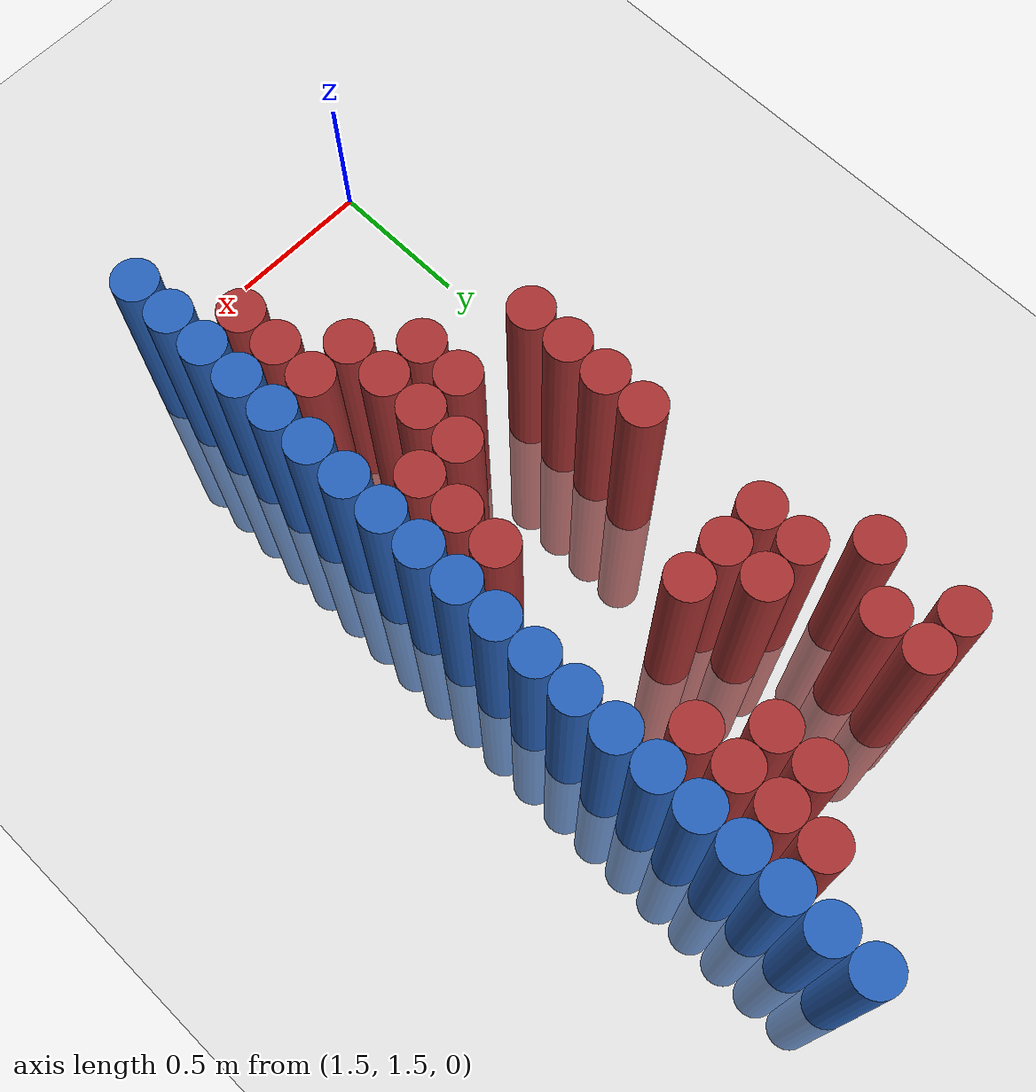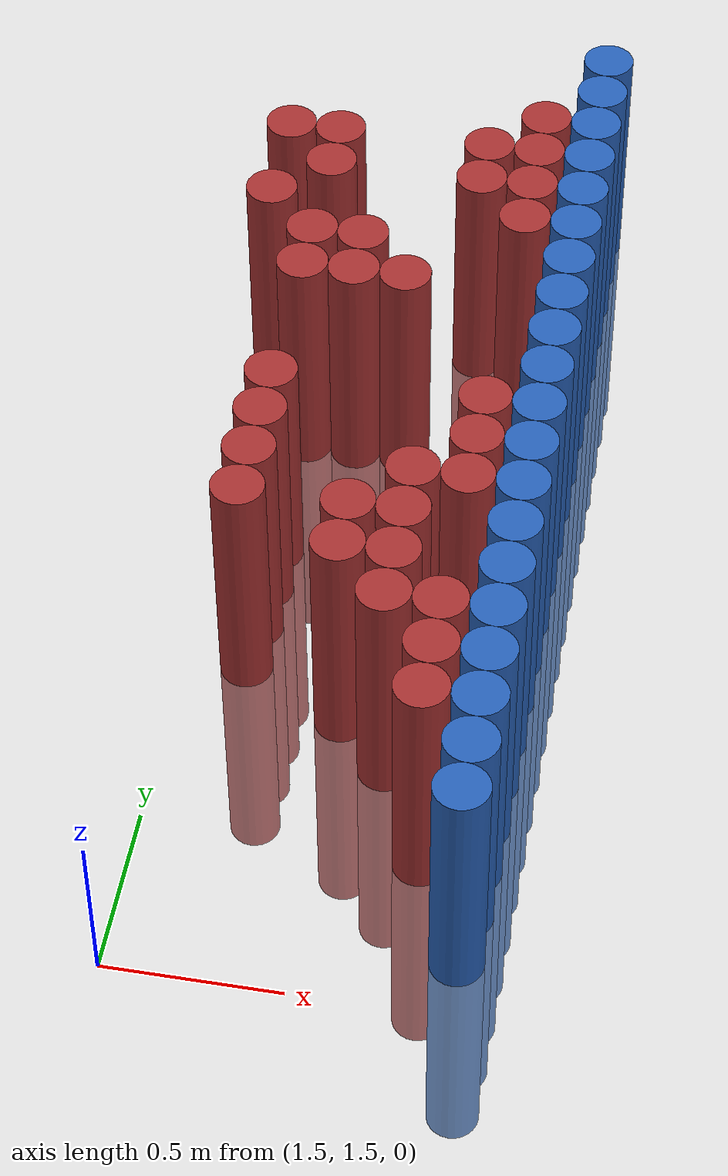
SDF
<sdf version="1.6">
 <world name="default">
  <model name="ground_plane">
   <static>1</static>
   <link name="link">
    <collision name="collision">
     <geometry><plane><normal>0 0 1</normal><size>100 100</size></plane></geometry>
     <surface><friction><ode><mu>100</mu><mu2>50</mu2></ode></friction></surface>
    </collision>
    <visual name="visual">
     <cast_shadows>0</cast_shadows>
     <geometry><plane><normal>0 0 1</normal><size>100 100</size></plane></geometry>
     <material>
      <script><uri>file://media/materials/scripts/gazebo.material</uri><name>Gazebo/Grey</name></script>
     </material>
    </visual>
   </link>
  </model>
  <model name="unit_cylinder_188">
   <static>1</static>
   <pose>1.525000 3.775000 0.000000 0.000000 0.000000 0.000000</pose>
   <link name="link">
    <inertial>
     <mass>1</mass>
     <inertia><ixx>0.145833</ixx><ixy>0</ixy><ixz>0</ixz><iyy>0.145833</iyy><iyz>0</iyz><izz>0.125</izz></inertia>
    </inertial>
    <collision name="collision">
     <geometry><cylinder><radius>0.075000</radius><length>1.5</length></cylinder></geometry>
    </collision>
    <visual name="visual">
     <geometry><cylinder><radius>0.075000</radius><length>1.5</length></cylinder></geometry>
     <material>
      <ambient>0.648000 0.192000 0.192000 1</ambient>
      <diffuse>0.648000 0.192000 0.192000 1</diffuse>
     </material>
     <material>
      <script><name>Gazebo/Grey</name><uri>file://media/materials/scripts/gazebo.material</uri></script>
     </material>
    </visual>
   </link>
  </model>
  <model name="unit_cylinder_189">
   <static>1</static>
   <pose>1.525000 4.075000 0.000000 0.000000 0.000000 0.000000</pose>
   <link name="link">
    <inertial>
     <mass>1</mass>
     <inertia><ixx>0.145833</ixx><ixy>0</ixy><ixz>0</ixz><iyy>0.145833</iyy><iyz>0</iyz><izz>0.125</izz></inertia>
    </inertial>
    <collision name="collision">
     <geometry><cylinder><radius>0.075000</radius><length>1.5</length></cylinder></geometry>
    </collision>
    <visual name="visual">
     <geometry><cylinder><radius>0.075000</radius><length>1.5</length></cylinder></geometry>
     <material>
      <ambient>0.648000 0.192000 0.192000 1</ambient>
      <diffuse>0.648000 0.192000 0.192000 1</diffuse>
     </material>
     <material>
      <script><name>Gazebo/Grey</name><uri>file://media/materials/scripts/gazebo.material</uri></script>
     </material>
    </visual>
   </link>
  </model>
  <model name="unit_cylinder_190">
   <static>1</static>
   <pose>1.675000 2.575000 0.000000 0.000000 0.000000 0.000000</pose>
   <link name="link">
    <inertial>
     <mass>1</mass>
     <inertia><ixx>0.145833</ixx><ixy>0</ixy><ixz>0</ixz><iyy>0.145833</iyy><iyz>0</iyz><izz>0.125</izz></inertia>
    </inertial>
    <collision name="collision">
     <geometry><cylinder><radius>0.075000</radius><length>1.5</length></cylinder></geometry>
    </collision>
    <visual name="visual">
     <geometry><cylinder><radius>0.075000</radius><length>1.5</length></cylinder></geometry>
     <material>
      <ambient>0.648000 0.192000 0.192000 1</ambient>
      <diffuse>0.648000 0.192000 0.192000 1</diffuse>
     </material>
     <material>
      <script><name>Gazebo/Grey</name><uri>file://media/materials/scripts/gazebo.material</uri></script>
     </material>
    </visual>
   </link>
  </model>
  <model name="unit_cylinder_191">
   <static>1</static>
   <pose>1.675000 2.725000 0.000000 0.000000 0.000000 0.000000</pose>
   <link name="link">
    <inertial>
     <mass>1</mass>
     <inertia><ixx>0.145833</ixx><ixy>0</ixy><ixz>0</ixz><iyy>0.145833</iyy><iyz>0</iyz><izz>0.125</izz></inertia>
    </inertial>
    <collision name="collision">
     <geometry><cylinder><radius>0.075000</radius><length>1.5</length></cylinder></geometry>
    </collision>
    <visual name="visual">
     <geometry><cylinder><radius>0.075000</radius><length>1.5</length></cylinder></geometry>
     <material>
      <ambient>0.648000 0.192000 0.192000 1</ambient>
      <diffuse>0.648000 0.192000 0.192000 1</diffuse>
     </material>
     <material>
      <script><name>Gazebo/Grey</name><uri>file://media/materials/scripts/gazebo.material</uri></script>
     </material>
    </visual>
   </link>
  </model>
  <model name="unit_cylinder_192">
   <static>1</static>
   <pose>1.675000 2.875000 0.000000 0.000000 0.000000 0.000000</pose>
   <link name="link">
    <inertial>
     <mass>1</mass>
     <inertia><ixx>0.145833</ixx><ixy>0</ixy><ixz>0</ixz><iyy>0.145833</iyy><iyz>0</iyz><izz>0.125</izz></inertia>
    </inertial>
    <collision name="collision">
     <geometry><cylinder><radius>0.075000</radius><length>1.5</length></cylinder></geometry>
    </collision>
    <visual name="visual">
     <geometry><cylinder><radius>0.075000</radius><length>1.5</length></cylinder></geometry>
     <material>
      <ambient>0.648000 0.192000 0.192000 1</ambient>
      <diffuse>0.648000 0.192000 0.192000 1</diffuse>
     </material>
     <material>
      <script><name>Gazebo/Grey</name><uri>file://media/materials/scripts/gazebo.material</uri></script>
     </material>
    </visual>
   </link>
  </model>
  <model name="unit_cylinder_193">
   <static>1</static>
   <pose>1.675000 3.025000 0.000000 0.000000 0.000000 0.000000</pose>
   <link name="link">
    <inertial>
     <mass>1</mass>
     <inertia><ixx>0.145833</ixx><ixy>0</ixy><ixz>0</ixz><iyy>0.145833</iyy><iyz>0</iyz><izz>0.125</izz></inertia>
    </inertial>
    <collision name="collision">
     <geometry><cylinder><radius>0.075000</radius><length>1.5</length></cylinder></geometry>
    </collision>
    <visual name="visual">
     <geometry><cylinder><radius>0.075000</radius><length>1.5</length></cylinder></geometry>
     <material>
      <ambient>0.648000 0.192000 0.192000 1</ambient>
      <diffuse>0.648000 0.192000 0.192000 1</diffuse>
     </material>
     <material>
      <script><name>Gazebo/Grey</name><uri>file://media/materials/scripts/gazebo.material</uri></script>
     </material>
    </visual>
   </link>
  </model>
  <model name="unit_cylinder_194">
   <static>1</static>
   <pose>1.675000 3.475000 0.000000 0.000000 0.000000 0.000000</pose>
   <link name="link">
    <inertial>
     <mass>1</mass>
     <inertia><ixx>0.145833</ixx><ixy>0</ixy><ixz>0</ixz><iyy>0.145833</iyy><iyz>0</iyz><izz>0.125</izz></inertia>
    </inertial>
    <collision name="collision">
     <geometry><cylinder><radius>0.075000</radius><length>1.5</length></cylinder></geometry>
    </collision>
    <visual name="visual">
     <geometry><cylinder><radius>0.075000</radius><length>1.5</length></cylinder></geometry>
     <material>
      <ambient>0.648000 0.192000 0.192000 1</ambient>
      <diffuse>0.648000 0.192000 0.192000 1</diffuse>
     </material>
     <material>
      <script><name>Gazebo/Grey</name><uri>file://media/materials/scripts/gazebo.material</uri></script>
     </material>
    </visual>
   </link>
  </model>
  <model name="unit_cylinder_195">
   <static>1</static>
   <pose>1.675000 3.625000 0.000000 0.000000 0.000000 0.000000</pose>
   <link name="link">
    <inertial>
     <mass>1</mass>
     <inertia><ixx>0.145833</ixx><ixy>0</ixy><ixz>0</ixz><iyy>0.145833</iyy><iyz>0</iyz><izz>0.125</izz></inertia>
    </inertial>
    <collision name="collision">
     <geometry><cylinder><radius>0.075000</radius><length>1.5</length></cylinder></geometry>
    </collision>
    <visual name="visual">
     <geometry><cylinder><radius>0.075000</radius><length>1.5</length></cylinder></geometry>
     <material>
      <ambient>0.648000 0.192000 0.192000 1</ambient>
      <diffuse>0.648000 0.192000 0.192000 1</diffuse>
     </material>
     <material>
      <script><name>Gazebo/Grey</name><uri>file://media/materials/scripts/gazebo.material</uri></script>
     </material>
    </visual>
   </link>
  </model>
  <model name="unit_cylinder_196">
   <static>1</static>
   <pose>1.675000 3.925000 0.000000 0.000000 0.000000 0.000000</pose>
   <link name="link">
    <inertial>
     <mass>1</mass>
     <inertia><ixx>0.145833</ixx><ixy>0</ixy><ixz>0</ixz><iyy>0.145833</iyy><iyz>0</iyz><izz>0.125</izz></inertia>
    </inertial>
    <collision name="collision">
     <geometry><cylinder><radius>0.075000</radius><length>1.5</length></cylinder></geometry>
    </collision>
    <visual name="visual">
     <geometry><cylinder><radius>0.075000</radius><length>1.5</length></cylinder></geometry>
     <material>
      <ambient>0.648000 0.192000 0.192000 1</ambient>
      <diffuse>0.648000 0.192000 0.192000 1</diffuse>
     </material>
     <material>
      <script><name>Gazebo/Grey</name><uri>file://media/materials/scripts/gazebo.material</uri></script>
     </material>
    </visual>
   </link>
  </model>
  <model name="unit_cylinder_197">
   <static>1</static>
   <pose>1.675000 4.075000 0.000000 0.000000 0.000000 0.000000</pose>
   <link name="link">
    <inertial>
     <mass>1</mass>
     <inertia><ixx>0.145833</ixx><ixy>0</ixy><ixz>0</ixz><iyy>0.145833</iyy><iyz>0</iyz><izz>0.125</izz></inertia>
    </inertial>
    <collision name="collision">
     <geometry><cylinder><radius>0.075000</radius><length>1.5</length></cylinder></geometry>
    </collision>
    <visual name="visual">
     <geometry><cylinder><radius>0.075000</radius><length>1.5</length></cylinder></geometry>
     <material>
      <ambient>0.648000 0.192000 0.192000 1</ambient>
      <diffuse>0.648000 0.192000 0.192000 1</diffuse>
     </material>
     <material>
      <script><name>Gazebo/Grey</name><uri>file://media/materials/scripts/gazebo.material</uri></script>
     </material>
    </visual>
   </link>
  </model>
  <model name="unit_cylinder_198">
   <static>1</static>
   <pose>1.825000 3.475000 0.000000 0.000000 0.000000 0.000000</pose>
   <link name="link">
    <inertial>
     <mass>1</mass>
     <inertia><ixx>0.145833</ixx><ixy>0</ixy><ixz>0</ixz><iyy>0.145833</iyy><iyz>0</iyz><izz>0.125</izz></inertia>
    </inertial>
    <collision name="collision">
     <geometry><cylinder><radius>0.075000</radius><length>1.5</length></cylinder></geometry>
    </collision>
    <visual name="visual">
     <geometry><cylinder><radius>0.075000</radius><length>1.5</length></cylinder></geometry>
     <material>
      <ambient>0.648000 0.192000 0.192000 1</ambient>
      <diffuse>0.648000 0.192000 0.192000 1</diffuse>
     </material>
     <material>
      <script><name>Gazebo/Grey</name><uri>file://media/materials/scripts/gazebo.material</uri></script>
     </material>
    </visual>
   </link>
  </model>
  <model name="unit_cylinder_199">
   <static>1</static>
   <pose>1.825000 3.625000 0.000000 0.000000 0.000000 0.000000</pose>
   <link name="link">
    <inertial>
     <mass>1</mass>
     <inertia><ixx>0.145833</ixx><ixy>0</ixy><ixz>0</ixz><iyy>0.145833</iyy><iyz>0</iyz><izz>0.125</izz></inertia>
    </inertial>
    <collision name="collision">
     <geometry><cylinder><radius>0.075000</radius><length>1.5</length></cylinder></geometry>
    </collision>
    <visual name="visual">
     <geometry><cylinder><radius>0.075000</radius><length>1.5</length></cylinder></geometry>
     <material>
      <ambient>0.648000 0.192000 0.192000 1</ambient>
      <diffuse>0.648000 0.192000 0.192000 1</diffuse>
     </material>
     <material>
      <script><name>Gazebo/Grey</name><uri>file://media/materials/scripts/gazebo.material</uri></script>
     </material>
    </visual>
   </link>
  </model>
  <model name="unit_cylinder_200">
   <static>1</static>
   <pose>1.975000 2.425000 0.000000 0.000000 0.000000 0.000000</pose>
   <link name="link">
    <inertial>
     <mass>1</mass>
     <inertia><ixx>0.145833</ixx><ixy>0</ixy><ixz>0</ixz><iyy>0.145833</iyy><iyz>0</iyz><izz>0.125</izz></inertia>
    </inertial>
    <collision name="collision">
     <geometry><cylinder><radius>0.075000</radius><length>1.5</length></cylinder></geometry>
    </collision>
    <visual name="visual">
     <geometry><cylinder><radius>0.075000</radius><length>1.5</length></cylinder></geometry>
     <material>
      <ambient>0.648000 0.192000 0.192000 1</ambient>
      <diffuse>0.648000 0.192000 0.192000 1</diffuse>
     </material>
     <material>
      <script><name>Gazebo/Grey</name><uri>file://media/materials/scripts/gazebo.material</uri></script>
     </material>
    </visual>
   </link>
  </model>
  <model name="unit_cylinder_201">
   <static>1</static>
   <pose>1.975000 2.575000 0.000000 0.000000 0.000000 0.000000</pose>
   <link name="link">
    <inertial>
     <mass>1</mass>
     <inertia><ixx>0.145833</ixx><ixy>0</ixy><ixz>0</ixz><iyy>0.145833</iyy><iyz>0</iyz><izz>0.125</izz></inertia>
    </inertial>
    <collision name="collision">
     <geometry><cylinder><radius>0.075000</radius><length>1.5</length></cylinder></geometry>
    </collision>
    <visual name="visual">
     <geometry><cylinder><radius>0.075000</radius><length>1.5</length></cylinder></geometry>
     <material>
      <ambient>0.648000 0.192000 0.192000 1</ambient>
      <diffuse>0.648000 0.192000 0.192000 1</diffuse>
     </material>
     <material>
      <script><name>Gazebo/Grey</name><uri>file://media/materials/scripts/gazebo.material</uri></script>
     </material>
    </visual>
   </link>
  </model>
  <model name="unit_cylinder_202">
   <static>1</static>
   <pose>1.975000 3.475000 0.000000 0.000000 0.000000 0.000000</pose>
   <link name="link">
    <inertial>
     <mass>1</mass>
     <inertia><ixx>0.145833</ixx><ixy>0</ixy><ixz>0</ixz><iyy>0.145833</iyy><iyz>0</iyz><izz>0.125</izz></inertia>
    </inertial>
    <collision name="collision">
     <geometry><cylinder><radius>0.075000</radius><length>1.5</length></cylinder></geometry>
    </collision>
    <visual name="visual">
     <geometry><cylinder><radius>0.075000</radius><length>1.5</length></cylinder></geometry>
     <material>
      <ambient>0.648000 0.192000 0.192000 1</ambient>
      <diffuse>0.648000 0.192000 0.192000 1</diffuse>
     </material>
     <material>
      <script><name>Gazebo/Grey</name><uri>file://media/materials/scripts/gazebo.material</uri></script>
     </material>
    </visual>
   </link>
  </model>
  <model name="unit_cylinder_203">
   <static>1</static>
   <pose>2.125000 2.275000 0.000000 0.000000 0.000000 0.000000</pose>
   <link name="link">
    <inertial>
     <mass>1</mass>
     <inertia><ixx>0.145833</ixx><ixy>0</ixy><ixz>0</ixz><iyy>0.145833</iyy><iyz>0</iyz><izz>0.125</izz></inertia>
    </inertial>
    <collision name="collision">
     <geometry><cylinder><radius>0.075000</radius><length>1.5</length></cylinder></geometry>
    </collision>
    <visual name="visual">
     <geometry><cylinder><radius>0.075000</radius><length>1.5</length></cylinder></geometry>
     <material>
      <ambient>0.648000 0.192000 0.192000 1</ambient>
      <diffuse>0.648000 0.192000 0.192000 1</diffuse>
     </material>
     <material>
      <script><name>Gazebo/Grey</name><uri>file://media/materials/scripts/gazebo.material</uri></script>
     </material>
    </visual>
   </link>
  </model>
  <model name="unit_cylinder_204">
   <static>1</static>
   <pose>2.125000 2.425000 0.000000 0.000000 0.000000 0.000000</pose>
   <link name="link">
    <inertial>
     <mass>1</mass>
     <inertia><ixx>0.145833</ixx><ixy>0</ixy><ixz>0</ixz><iyy>0.145833</iyy><iyz>0</iyz><izz>0.125</izz></inertia>
    </inertial>
    <collision name="collision">
     <geometry><cylinder><radius>0.075000</radius><length>1.5</length></cylinder></geometry>
    </collision>
    <visual name="visual">
     <geometry><cylinder><radius>0.075000</radius><length>1.5</length></cylinder></geometry>
     <material>
      <ambient>0.648000 0.192000 0.192000 1</ambient>
      <diffuse>0.648000 0.192000 0.192000 1</diffuse>
     </material>
     <material>
      <script><name>Gazebo/Grey</name><uri>file://media/materials/scripts/gazebo.material</uri></script>
     </material>
    </visual>
   </link>
  </model>
  <model name="unit_cylinder_205">
   <static>1</static>
   <pose>2.125000 2.575000 0.000000 0.000000 0.000000 0.000000</pose>
   <link name="link">
    <inertial>
     <mass>1</mass>
     <inertia><ixx>0.145833</ixx><ixy>0</ixy><ixz>0</ixz><iyy>0.145833</iyy><iyz>0</iyz><izz>0.125</izz></inertia>
    </inertial>
    <collision name="collision">
     <geometry><cylinder><radius>0.075000</radius><length>1.5</length></cylinder></geometry>
    </collision>
    <visual name="visual">
     <geometry><cylinder><radius>0.075000</radius><length>1.5</length></cylinder></geometry>
     <material>
      <ambient>0.648000 0.192000 0.192000 1</ambient>
      <diffuse>0.648000 0.192000 0.192000 1</diffuse>
     </material>
     <material>
      <script><name>Gazebo/Grey</name><uri>file://media/materials/scripts/gazebo.material</uri></script>
     </material>
    </visual>
   </link>
  </model>
  <model name="unit_cylinder_206">
   <static>1</static>
   <pose>2.125000 2.725000 0.000000 0.000000 0.000000 0.000000</pose>
   <link name="link">
    <inertial>
     <mass>1</mass>
     <inertia><ixx>0.145833</ixx><ixy>0</ixy><ixz>0</ixz><iyy>0.145833</iyy><iyz>0</iyz><izz>0.125</izz></inertia>
    </inertial>
    <collision name="collision">
     <geometry><cylinder><radius>0.075000</radius><length>1.5</length></cylinder></geometry>
    </collision>
    <visual name="visual">
     <geometry><cylinder><radius>0.075000</radius><length>1.5</length></cylinder></geometry>
     <material>
      <ambient>0.648000 0.192000 0.192000 1</ambient>
      <diffuse>0.648000 0.192000 0.192000 1</diffuse>
     </material>
     <material>
      <script><name>Gazebo/Grey</name><uri>file://media/materials/scripts/gazebo.material</uri></script>
     </material>
    </visual>
   </link>
  </model>
  <model name="unit_cylinder_207">
   <static>1</static>
   <pose>2.125000 3.925000 0.000000 0.000000 0.000000 0.000000</pose>
   <link name="link">
    <inertial>
     <mass>1</mass>
     <inertia><ixx>0.145833</ixx><ixy>0</ixy><ixz>0</ixz><iyy>0.145833</iyy><iyz>0</iyz><izz>0.125</izz></inertia>
    </inertial>
    <collision name="collision">
     <geometry><cylinder><radius>0.075000</radius><length>1.5</length></cylinder></geometry>
    </collision>
    <visual name="visual">
     <geometry><cylinder><radius>0.075000</radius><length>1.5</length></cylinder></geometry>
     <material>
      <ambient>0.648000 0.192000 0.192000 1</ambient>
      <diffuse>0.648000 0.192000 0.192000 1</diffuse>
     </material>
     <material>
      <script><name>Gazebo/Grey</name><uri>file://media/materials/scripts/gazebo.material</uri></script>
     </material>
    </visual>
   </link>
  </model>
  <model name="unit_cylinder_208">
   <static>1</static>
   <pose>2.125000 4.075000 0.000000 0.000000 0.000000 0.000000</pose>
   <link name="link">
    <inertial>
     <mass>1</mass>
     <inertia><ixx>0.145833</ixx><ixy>0</ixy><ixz>0</ixz><iyy>0.145833</iyy><iyz>0</iyz><izz>0.125</izz></inertia>
    </inertial>
    <collision name="collision">
     <geometry><cylinder><radius>0.075000</radius><length>1.5</length></cylinder></geometry>
    </collision>
    <visual name="visual">
     <geometry><cylinder><radius>0.075000</radius><length>1.5</length></cylinder></geometry>
     <material>
      <ambient>0.648000 0.192000 0.192000 1</ambient>
      <diffuse>0.648000 0.192000 0.192000 1</diffuse>
     </material>
     <material>
      <script><name>Gazebo/Grey</name><uri>file://media/materials/scripts/gazebo.material</uri></script>
     </material>
    </visual>
   </link>
  </model>
  <model name="unit_cylinder_211">
   <static>1</static>
   <pose>2.275000 1.975000 0.000000 0.000000 0.000000 0.000000</pose>
   <link name="link">
    <inertial>
     <mass>1</mass>
     <inertia><ixx>0.145833</ixx><ixy>0</ixy><ixz>0</ixz><iyy>0.145833</iyy><iyz>0</iyz><izz>0.125</izz></inertia>
    </inertial>
    <collision name="collision">
     <geometry><cylinder><radius>0.075000</radius><length>1.5</length></cylinder></geometry>
    </collision>
    <visual name="visual">
     <geometry><cylinder><radius>0.075000</radius><length>1.5</length></cylinder></geometry>
     <material>
      <ambient>0.648000 0.192000 0.192000 1</ambient>
      <diffuse>0.648000 0.192000 0.192000 1</diffuse>
     </material>
     <material>
      <script><name>Gazebo/Grey</name><uri>file://media/materials/scripts/gazebo.material</uri></script>
     </material>
    </visual>
   </link>
  </model>
  <model name="unit_cylinder_212">
   <static>1</static>
   <pose>2.275000 2.125000 0.000000 0.000000 0.000000 0.000000</pose>
   <link name="link">
    <inertial>
     <mass>1</mass>
     <inertia><ixx>0.145833</ixx><ixy>0</ixy><ixz>0</ixz><iyy>0.145833</iyy><iyz>0</iyz><izz>0.125</izz></inertia>
    </inertial>
    <collision name="collision">
     <geometry><cylinder><radius>0.075000</radius><length>1.5</length></cylinder></geometry>
    </collision>
    <visual name="visual">
     <geometry><cylinder><radius>0.075000</radius><length>1.5</length></cylinder></geometry>
     <material>
      <ambient>0.648000 0.192000 0.192000 1</ambient>
      <diffuse>0.648000 0.192000 0.192000 1</diffuse>
     </material>
     <material>
      <script><name>Gazebo/Grey</name><uri>file://media/materials/scripts/gazebo.material</uri></script>
     </material>
    </visual>
   </link>
  </model>
  <model name="unit_cylinder_213">
   <static>1</static>
   <pose>2.275000 2.275000 0.000000 0.000000 0.000000 0.000000</pose>
   <link name="link">
    <inertial>
     <mass>1</mass>
     <inertia><ixx>0.145833</ixx><ixy>0</ixy><ixz>0</ixz><iyy>0.145833</iyy><iyz>0</iyz><izz>0.125</izz></inertia>
    </inertial>
    <collision name="collision">
     <geometry><cylinder><radius>0.075000</radius><length>1.5</length></cylinder></geometry>
    </collision>
    <visual name="visual">
     <geometry><cylinder><radius>0.075000</radius><length>1.5</length></cylinder></geometry>
     <material>
      <ambient>0.648000 0.192000 0.192000 1</ambient>
      <diffuse>0.648000 0.192000 0.192000 1</diffuse>
     </material>
     <material>
      <script><name>Gazebo/Grey</name><uri>file://media/materials/scripts/gazebo.material</uri></script>
     </material>
    </visual>
   </link>
  </model>
  <model name="unit_cylinder_214">
   <static>1</static>
   <pose>2.275000 2.725000 0.000000 0.000000 0.000000 0.000000</pose>
   <link name="link">
    <inertial>
     <mass>1</mass>
     <inertia><ixx>0.145833</ixx><ixy>0</ixy><ixz>0</ixz><iyy>0.145833</iyy><iyz>0</iyz><izz>0.125</izz></inertia>
    </inertial>
    <collision name="collision">
     <geometry><cylinder><radius>0.075000</radius><length>1.5</length></cylinder></geometry>
    </collision>
    <visual name="visual">
     <geometry><cylinder><radius>0.075000</radius><length>1.5</length></cylinder></geometry>
     <material>
      <ambient>0.648000 0.192000 0.192000 1</ambient>
      <diffuse>0.648000 0.192000 0.192000 1</diffuse>
     </material>
     <material>
      <script><name>Gazebo/Grey</name><uri>file://media/materials/scripts/gazebo.material</uri></script>
     </material>
    </visual>
   </link>
  </model>
  <model name="unit_cylinder_215">
   <static>1</static>
   <pose>2.275000 2.875000 0.000000 0.000000 0.000000 0.000000</pose>
   <link name="link">
    <inertial>
     <mass>1</mass>
     <inertia><ixx>0.145833</ixx><ixy>0</ixy><ixz>0</ixz><iyy>0.145833</iyy><iyz>0</iyz><izz>0.125</izz></inertia>
    </inertial>
    <collision name="collision">
     <geometry><cylinder><radius>0.075000</radius><length>1.5</length></cylinder></geometry>
    </collision>
    <visual name="visual">
     <geometry><cylinder><radius>0.075000</radius><length>1.5</length></cylinder></geometry>
     <material>
      <ambient>0.648000 0.192000 0.192000 1</ambient>
      <diffuse>0.648000 0.192000 0.192000 1</diffuse>
     </material>
     <material>
      <script><name>Gazebo/Grey</name><uri>file://media/materials/scripts/gazebo.material</uri></script>
     </material>
    </visual>
   </link>
  </model>
  <model name="unit_cylinder_216">
   <static>1</static>
   <pose>2.275000 3.025000 0.000000 0.000000 0.000000 0.000000</pose>
   <link name="link">
    <inertial>
     <mass>1</mass>
     <inertia><ixx>0.145833</ixx><ixy>0</ixy><ixz>0</ixz><iyy>0.145833</iyy><iyz>0</iyz><izz>0.125</izz></inertia>
    </inertial>
    <collision name="collision">
     <geometry><cylinder><radius>0.075000</radius><length>1.5</length></cylinder></geometry>
    </collision>
    <visual name="visual">
     <geometry><cylinder><radius>0.075000</radius><length>1.5</length></cylinder></geometry>
     <material>
      <ambient>0.648000 0.192000 0.192000 1</ambient>
      <diffuse>0.648000 0.192000 0.192000 1</diffuse>
     </material>
     <material>
      <script><name>Gazebo/Grey</name><uri>file://media/materials/scripts/gazebo.material</uri></script>
     </material>
    </visual>
   </link>
  </model>
  <model name="unit_cylinder_217">
   <static>1</static>
   <pose>2.275000 3.775000 0.000000 0.000000 0.000000 0.000000</pose>
   <link name="link">
    <inertial>
     <mass>1</mass>
     <inertia><ixx>0.145833</ixx><ixy>0</ixy><ixz>0</ixz><iyy>0.145833</iyy><iyz>0</iyz><izz>0.125</izz></inertia>
    </inertial>
    <collision name="collision">
     <geometry><cylinder><radius>0.075000</radius><length>1.5</length></cylinder></geometry>
    </collision>
    <visual name="visual">
     <geometry><cylinder><radius>0.075000</radius><length>1.5</length></cylinder></geometry>
     <material>
      <ambient>0.648000 0.192000 0.192000 1</ambient>
      <diffuse>0.648000 0.192000 0.192000 1</diffuse>
     </material>
     <material>
      <script><name>Gazebo/Grey</name><uri>file://media/materials/scripts/gazebo.material</uri></script>
     </material>
    </visual>
   </link>
  </model>
  <model name="unit_cylinder_218">
   <static>1</static>
   <pose>2.275000 3.925000 0.000000 0.000000 0.000000 0.000000</pose>
   <link name="link">
    <inertial>
     <mass>1</mass>
     <inertia><ixx>0.145833</ixx><ixy>0</ixy><ixz>0</ixz><iyy>0.145833</iyy><iyz>0</iyz><izz>0.125</izz></inertia>
    </inertial>
    <collision name="collision">
     <geometry><cylinder><radius>0.075000</radius><length>1.5</length></cylinder></geometry>
    </collision>
    <visual name="visual">
     <geometry><cylinder><radius>0.075000</radius><length>1.5</length></cylinder></geometry>
     <material>
      <ambient>0.648000 0.192000 0.192000 1</ambient>
      <diffuse>0.648000 0.192000 0.192000 1</diffuse>
     </material>
     <material>
      <script><name>Gazebo/Grey</name><uri>file://media/materials/scripts/gazebo.material</uri></script>
     </material>
    </visual>
   </link>
  </model>
  <model name="unit_cylinder_219">
   <static>1</static>
   <pose>2.275000 4.075000 0.000000 0.000000 0.000000 0.000000</pose>
   <link name="link">
    <inertial>
     <mass>1</mass>
     <inertia><ixx>0.145833</ixx><ixy>0</ixy><ixz>0</ixz><iyy>0.145833</iyy><iyz>0</iyz><izz>0.125</izz></inertia>
    </inertial>
    <collision name="collision">
     <geometry><cylinder><radius>0.075000</radius><length>1.5</length></cylinder></geometry>
    </collision>
    <visual name="visual">
     <geometry><cylinder><radius>0.075000</radius><length>1.5</length></cylinder></geometry>
     <material>
      <ambient>0.648000 0.192000 0.192000 1</ambient>
      <diffuse>0.648000 0.192000 0.192000 1</diffuse>
     </material>
     <material>
      <script><name>Gazebo/Grey</name><uri>file://media/materials/scripts/gazebo.material</uri></script>
     </material>
    </visual>
   </link>
  </model>
  <model name="unit_cylinder_220">
   <static>1</static>
   <pose>2.275000 4.225000 0.000000 0.000000 0.000000 0.000000</pose>
   <link name="link">
    <inertial>
     <mass>1</mass>
     <inertia><ixx>0.145833</ixx><ixy>0</ixy><ixz>0</ixz><iyy>0.145833</iyy><iyz>0</iyz><izz>0.125</izz></inertia>
    </inertial>
    <collision name="collision">
     <geometry><cylinder><radius>0.075000</radius><length>1.5</length></cylinder></geometry>
    </collision>
    <visual name="visual">
     <geometry><cylinder><radius>0.075000</radius><length>1.5</length></cylinder></geometry>
     <material>
      <ambient>0.648000 0.192000 0.192000 1</ambient>
      <diffuse>0.648000 0.192000 0.192000 1</diffuse>
     </material>
     <material>
      <script><name>Gazebo/Grey</name><uri>file://media/materials/scripts/gazebo.material</uri></script>
     </material>
    </visual>
   </link>
  </model>
  <model name="unit_cylinder_231">
   <static>1</static>
   <pose>2.425000 1.675000 0.000000 0.000000 0.000000 0.000000</pose>
   <link name="link">
    <inertial>
     <mass>1</mass>
     <inertia><ixx>0.145833</ixx><ixy>0</ixy><ixz>0</ixz><iyy>0.145833</iyy><iyz>0</iyz><izz>0.125</izz></inertia>
    </inertial>
    <collision name="collision">
     <geometry><cylinder><radius>0.075000</radius><length>1.5</length></cylinder></geometry>
    </collision>
    <visual name="visual">
     <geometry><cylinder><radius>0.075000</radius><length>1.5</length></cylinder></geometry>
     <material>
      <ambient>0.152000 0.379000 0.720000 1</ambient>
      <diffuse>0.152000 0.379000 0.720000 1</diffuse>
     </material>
     <material>
      <script><name>Gazebo/Grey</name><uri>file://media/materials/scripts/gazebo.material</uri></script>
     </material>
    </visual>
   </link>
  </model>
  <model name="unit_cylinder_232">
   <static>1</static>
   <pose>2.425000 1.825000 0.000000 0.000000 0.000000 0.000000</pose>
   <link name="link">
    <inertial>
     <mass>1</mass>
     <inertia><ixx>0.145833</ixx><ixy>0</ixy><ixz>0</ixz><iyy>0.145833</iyy><iyz>0</iyz><izz>0.125</izz></inertia>
    </inertial>
    <collision name="collision">
     <geometry><cylinder><radius>0.075000</radius><length>1.5</length></cylinder></geometry>
    </collision>
    <visual name="visual">
     <geometry><cylinder><radius>0.075000</radius><length>1.5</length></cylinder></geometry>
     <material>
      <ambient>0.152000 0.379000 0.720000 1</ambient>
      <diffuse>0.152000 0.379000 0.720000 1</diffuse>
     </material>
     <material>
      <script><name>Gazebo/Grey</name><uri>file://media/materials/scripts/gazebo.material</uri></script>
     </material>
    </visual>
   </link>
  </model>
  <model name="unit_cylinder_233">
   <static>1</static>
   <pose>2.425000 1.975000 0.000000 0.000000 0.000000 0.000000</pose>
   <link name="link">
    <inertial>
     <mass>1</mass>
     <inertia><ixx>0.145833</ixx><ixy>0</ixy><ixz>0</ixz><iyy>0.145833</iyy><iyz>0</iyz><izz>0.125</izz></inertia>
    </inertial>
    <collision name="collision">
     <geometry><cylinder><radius>0.075000</radius><length>1.5</length></cylinder></geometry>
    </collision>
    <visual name="visual">
     <geometry><cylinder><radius>0.075000</radius><length>1.5</length></cylinder></geometry>
     <material>
      <ambient>0.152000 0.379000 0.720000 1</ambient>
      <diffuse>0.152000 0.379000 0.720000 1</diffuse>
     </material>
     <material>
      <script><name>Gazebo/Grey</name><uri>file://media/materials/scripts/gazebo.material</uri></script>
     </material>
    </visual>
   </link>
  </model>
  <model name="unit_cylinder_234">
   <static>1</static>
   <pose>2.425000 2.125000 0.000000 0.000000 0.000000 0.000000</pose>
   <link name="link">
    <inertial>
     <mass>1</mass>
     <inertia><ixx>0.145833</ixx><ixy>0</ixy><ixz>0</ixz><iyy>0.145833</iyy><iyz>0</iyz><izz>0.125</izz></inertia>
    </inertial>
    <collision name="collision">
     <geometry><cylinder><radius>0.075000</radius><length>1.5</length></cylinder></geometry>
    </collision>
    <visual name="visual">
     <geometry><cylinder><radius>0.075000</radius><length>1.5</length></cylinder></geometry>
     <material>
      <ambient>0.152000 0.379000 0.720000 1</ambient>
      <diffuse>0.152000 0.379000 0.720000 1</diffuse>
     </material>
     <material>
      <script><name>Gazebo/Grey</name><uri>file://media/materials/scripts/gazebo.material</uri></script>
     </material>
    </visual>
   </link>
  </model>
  <model name="unit_cylinder_235">
   <static>1</static>
   <pose>2.425000 2.275000 0.000000 0.000000 0.000000 0.000000</pose>
   <link name="link">
    <inertial>
     <mass>1</mass>
     <inertia><ixx>0.145833</ixx><ixy>0</ixy><ixz>0</ixz><iyy>0.145833</iyy><iyz>0</iyz><izz>0.125</izz></inertia>
    </inertial>
    <collision name="collision">
     <geometry><cylinder><radius>0.075000</radius><length>1.5</length></cylinder></geometry>
    </collision>
    <visual name="visual">
     <geometry><cylinder><radius>0.075000</radius><length>1.5</length></cylinder></geometry>
     <material>
      <ambient>0.152000 0.379000 0.720000 1</ambient>
      <diffuse>0.152000 0.379000 0.720000 1</diffuse>
     </material>
     <material>
      <script><name>Gazebo/Grey</name><uri>file://media/materials/scripts/gazebo.material</uri></script>
     </material>
    </visual>
   </link>
  </model>
  <model name="unit_cylinder_236">
   <static>1</static>
   <pose>2.425000 2.425000 0.000000 0.000000 0.000000 0.000000</pose>
   <link name="link">
    <inertial>
     <mass>1</mass>
     <inertia><ixx>0.145833</ixx><ixy>0</ixy><ixz>0</ixz><iyy>0.145833</iyy><iyz>0</iyz><izz>0.125</izz></inertia>
    </inertial>
    <collision name="collision">
     <geometry><cylinder><radius>0.075000</radius><length>1.5</length></cylinder></geometry>
    </collision>
    <visual name="visual">
     <geometry><cylinder><radius>0.075000</radius><length>1.5</length></cylinder></geometry>
     <material>
      <ambient>0.152000 0.379000 0.720000 1</ambient>
      <diffuse>0.152000 0.379000 0.720000 1</diffuse>
     </material>
     <material>
      <script><name>Gazebo/Grey</name><uri>file://media/materials/scripts/gazebo.material</uri></script>
     </material>
    </visual>
   </link>
  </model>
  <model name="unit_cylinder_237">
   <static>1</static>
   <pose>2.425000 2.575000 0.000000 0.000000 0.000000 0.000000</pose>
   <link name="link">
    <inertial>
     <mass>1</mass>
     <inertia><ixx>0.145833</ixx><ixy>0</ixy><ixz>0</ixz><iyy>0.145833</iyy><iyz>0</iyz><izz>0.125</izz></inertia>
    </inertial>
    <collision name="collision">
     <geometry><cylinder><radius>0.075000</radius><length>1.5</length></cylinder></geometry>
    </collision>
    <visual name="visual">
     <geometry><cylinder><radius>0.075000</radius><length>1.5</length></cylinder></geometry>
     <material>
      <ambient>0.152000 0.379000 0.720000 1</ambient>
      <diffuse>0.152000 0.379000 0.720000 1</diffuse>
     </material>
     <material>
      <script><name>Gazebo/Grey</name><uri>file://media/materials/scripts/gazebo.material</uri></script>
     </material>
    </visual>
   </link>
  </model>
  <model name="unit_cylinder_238">
   <static>1</static>
   <pose>2.425000 2.725000 0.000000 0.000000 0.000000 0.000000</pose>
   <link name="link">
    <inertial>
     <mass>1</mass>
     <inertia><ixx>0.145833</ixx><ixy>0</ixy><ixz>0</ixz><iyy>0.145833</iyy><iyz>0</iyz><izz>0.125</izz></inertia>
    </inertial>
    <collision name="collision">
     <geometry><cylinder><radius>0.075000</radius><length>1.5</length></cylinder></geometry>
    </collision>
    <visual name="visual">
     <geometry><cylinder><radius>0.075000</radius><length>1.5</length></cylinder></geometry>
     <material>
      <ambient>0.152000 0.379000 0.720000 1</ambient>
      <diffuse>0.152000 0.379000 0.720000 1</diffuse>
     </material>
     <material>
      <script><name>Gazebo/Grey</name><uri>file://media/materials/scripts/gazebo.material</uri></script>
     </material>
    </visual>
   </link>
  </model>
  <model name="unit_cylinder_239">
   <static>1</static>
   <pose>2.425000 2.875000 0.000000 0.000000 0.000000 0.000000</pose>
   <link name="link">
    <inertial>
     <mass>1</mass>
     <inertia><ixx>0.145833</ixx><ixy>0</ixy><ixz>0</ixz><iyy>0.145833</iyy><iyz>0</iyz><izz>0.125</izz></inertia>
    </inertial>
    <collision name="collision">
     <geometry><cylinder><radius>0.075000</radius><length>1.5</length></cylinder></geometry>
    </collision>
    <visual name="visual">
     <geometry><cylinder><radius>0.075000</radius><length>1.5</length></cylinder></geometry>
     <material>
      <ambient>0.152000 0.379000 0.720000 1</ambient>
      <diffuse>0.152000 0.379000 0.720000 1</diffuse>
     </material>
     <material>
      <script><name>Gazebo/Grey</name><uri>file://media/materials/scripts/gazebo.material</uri></script>
     </material>
    </visual>
   </link>
  </model>
  <model name="unit_cylinder_240">
   <static>1</static>
   <pose>2.425000 3.025000 0.000000 0.000000 0.000000 0.000000</pose>
   <link name="link">
    <inertial>
     <mass>1</mass>
     <inertia><ixx>0.145833</ixx><ixy>0</ixy><ixz>0</ixz><iyy>0.145833</iyy><iyz>0</iyz><izz>0.125</izz></inertia>
    </inertial>
    <collision name="collision">
     <geometry><cylinder><radius>0.075000</radius><length>1.5</length></cylinder></geometry>
    </collision>
    <visual name="visual">
     <geometry><cylinder><radius>0.075000</radius><length>1.5</length></cylinder></geometry>
     <material>
      <ambient>0.152000 0.379000 0.720000 1</ambient>
      <diffuse>0.152000 0.379000 0.720000 1</diffuse>
     </material>
     <material>
      <script><name>Gazebo/Grey</name><uri>file://media/materials/scripts/gazebo.material</uri></script>
     </material>
    </visual>
   </link>
  </model>
  <model name="unit_cylinder_241">
   <static>1</static>
   <pose>2.425000 3.175000 0.000000 0.000000 0.000000 0.000000</pose>
   <link name="link">
    <inertial>
     <mass>1</mass>
     <inertia><ixx>0.145833</ixx><ixy>0</ixy><ixz>0</ixz><iyy>0.145833</iyy><iyz>0</iyz><izz>0.125</izz></inertia>
    </inertial>
    <collision name="collision">
     <geometry><cylinder><radius>0.075000</radius><length>1.5</length></cylinder></geometry>
    </collision>
    <visual name="visual">
     <geometry><cylinder><radius>0.075000</radius><length>1.5</length></cylinder></geometry>
     <material>
      <ambient>0.152000 0.379000 0.720000 1</ambient>
      <diffuse>0.152000 0.379000 0.720000 1</diffuse>
     </material>
     <material>
      <script><name>Gazebo/Grey</name><uri>file://media/materials/scripts/gazebo.material</uri></script>
     </material>
    </visual>
   </link>
  </model>
  <model name="unit_cylinder_242">
   <static>1</static>
   <pose>2.425000 3.325000 0.000000 0.000000 0.000000 0.000000</pose>
   <link name="link">
    <inertial>
     <mass>1</mass>
     <inertia><ixx>0.145833</ixx><ixy>0</ixy><ixz>0</ixz><iyy>0.145833</iyy><iyz>0</iyz><izz>0.125</izz></inertia>
    </inertial>
    <collision name="collision">
     <geometry><cylinder><radius>0.075000</radius><length>1.5</length></cylinder></geometry>
    </collision>
    <visual name="visual">
     <geometry><cylinder><radius>0.075000</radius><length>1.5</length></cylinder></geometry>
     <material>
      <ambient>0.152000 0.379000 0.720000 1</ambient>
      <diffuse>0.152000 0.379000 0.720000 1</diffuse>
     </material>
     <material>
      <script><name>Gazebo/Grey</name><uri>file://media/materials/scripts/gazebo.material</uri></script>
     </material>
    </visual>
   </link>
  </model>
  <model name="unit_cylinder_243">
   <static>1</static>
   <pose>2.425000 3.475000 0.000000 0.000000 0.000000 0.000000</pose>
   <link name="link">
    <inertial>
     <mass>1</mass>
     <inertia><ixx>0.145833</ixx><ixy>0</ixy><ixz>0</ixz><iyy>0.145833</iyy><iyz>0</iyz><izz>0.125</izz></inertia>
    </inertial>
    <collision name="collision">
     <geometry><cylinder><radius>0.075000</radius><length>1.5</length></cylinder></geometry>
    </collision>
    <visual name="visual">
     <geometry><cylinder><radius>0.075000</radius><length>1.5</length></cylinder></geometry>
     <material>
      <ambient>0.152000 0.379000 0.720000 1</ambient>
      <diffuse>0.152000 0.379000 0.720000 1</diffuse>
     </material>
     <material>
      <script><name>Gazebo/Grey</name><uri>file://media/materials/scripts/gazebo.material</uri></script>
     </material>
    </visual>
   </link>
  </model>
  <model name="unit_cylinder_244">
   <static>1</static>
   <pose>2.425000 3.625000 0.000000 0.000000 0.000000 0.000000</pose>
   <link name="link">
    <inertial>
     <mass>1</mass>
     <inertia><ixx>0.145833</ixx><ixy>0</ixy><ixz>0</ixz><iyy>0.145833</iyy><iyz>0</iyz><izz>0.125</izz></inertia>
    </inertial>
    <collision name="collision">
     <geometry><cylinder><radius>0.075000</radius><length>1.5</length></cylinder></geometry>
    </collision>
    <visual name="visual">
     <geometry><cylinder><radius>0.075000</radius><length>1.5</length></cylinder></geometry>
     <material>
      <ambient>0.152000 0.379000 0.720000 1</ambient>
      <diffuse>0.152000 0.379000 0.720000 1</diffuse>
     </material>
     <material>
      <script><name>Gazebo/Grey</name><uri>file://media/materials/scripts/gazebo.material</uri></script>
     </material>
    </visual>
   </link>
  </model>
  <model name="unit_cylinder_245">
   <static>1</static>
   <pose>2.425000 3.775000 0.000000 0.000000 0.000000 0.000000</pose>
   <link name="link">
    <inertial>
     <mass>1</mass>
     <inertia><ixx>0.145833</ixx><ixy>0</ixy><ixz>0</ixz><iyy>0.145833</iyy><iyz>0</iyz><izz>0.125</izz></inertia>
    </inertial>
    <collision name="collision">
     <geometry><cylinder><radius>0.075000</radius><length>1.5</length></cylinder></geometry>
    </collision>
    <visual name="visual">
     <geometry><cylinder><radius>0.075000</radius><length>1.5</length></cylinder></geometry>
     <material>
      <ambient>0.152000 0.379000 0.720000 1</ambient>
      <diffuse>0.152000 0.379000 0.720000 1</diffuse>
     </material>
     <material>
      <script><name>Gazebo/Grey</name><uri>file://media/materials/scripts/gazebo.material</uri></script>
     </material>
    </visual>
   </link>
  </model>
  <model name="unit_cylinder_246">
   <static>1</static>
   <pose>2.425000 3.925000 0.000000 0.000000 0.000000 0.000000</pose>
   <link name="link">
    <inertial>
     <mass>1</mass>
     <inertia><ixx>0.145833</ixx><ixy>0</ixy><ixz>0</ixz><iyy>0.145833</iyy><iyz>0</iyz><izz>0.125</izz></inertia>
    </inertial>
    <collision name="collision">
     <geometry><cylinder><radius>0.075000</radius><length>1.5</length></cylinder></geometry>
    </collision>
    <visual name="visual">
     <geometry><cylinder><radius>0.075000</radius><length>1.5</length></cylinder></geometry>
     <material>
      <ambient>0.152000 0.379000 0.720000 1</ambient>
      <diffuse>0.152000 0.379000 0.720000 1</diffuse>
     </material>
     <material>
      <script><name>Gazebo/Grey</name><uri>file://media/materials/scripts/gazebo.material</uri></script>
     </material>
    </visual>
   </link>
  </model>
  <model name="unit_cylinder_247">
   <static>1</static>
   <pose>2.425000 4.075000 0.000000 0.000000 0.000000 0.000000</pose>
   <link name="link">
    <inertial>
     <mass>1</mass>
     <inertia><ixx>0.145833</ixx><ixy>0</ixy><ixz>0</ixz><iyy>0.145833</iyy><iyz>0</iyz><izz>0.125</izz></inertia>
    </inertial>
    <collision name="collision">
     <geometry><cylinder><radius>0.075000</radius><length>1.5</length></cylinder></geometry>
    </collision>
    <visual name="visual">
     <geometry><cylinder><radius>0.075000</radius><length>1.5</length></cylinder></geometry>
     <material>
      <ambient>0.152000 0.379000 0.720000 1</ambient>
      <diffuse>0.152000 0.379000 0.720000 1</diffuse>
     </material>
     <material>
      <script><name>Gazebo/Grey</name><uri>file://media/materials/scripts/gazebo.material</uri></script>
     </material>
    </visual>
   </link>
  </model>
  <model name="unit_cylinder_248">
   <static>1</static>
   <pose>2.425000 4.225000 0.000000 0.000000 0.000000 0.000000</pose>
   <link name="link">
    <inertial>
     <mass>1</mass>
     <inertia><ixx>0.145833</ixx><ixy>0</ixy><ixz>0</ixz><iyy>0.145833</iyy><iyz>0</iyz><izz>0.125</izz></inertia>
    </inertial>
    <collision name="collision">
     <geometry><cylinder><radius>0.075000</radius><length>1.5</length></cylinder></geometry>
    </collision>
    <visual name="visual">
     <geometry><cylinder><radius>0.075000</radius><length>1.5</length></cylinder></geometry>
     <material>
      <ambient>0.152000 0.379000 0.720000 1</ambient>
      <diffuse>0.152000 0.379000 0.720000 1</diffuse>
     </material>
     <material>
      <script><name>Gazebo/Grey</name><uri>file://media/materials/scripts/gazebo.material</uri></script>
     </material>
    </visual>
   </link>
  </model>
  <model name="unit_cylinder_249">
   <static>1</static>
   <pose>2.425000 4.375000 0.000000 0.000000 0.000000 0.000000</pose>
   <link name="link">
    <inertial>
     <mass>1</mass>
     <inertia><ixx>0.145833</ixx><ixy>0</ixy><ixz>0</ixz><iyy>0.145833</iyy><iyz>0</iyz><izz>0.125</izz></inertia>
    </inertial>
    <collision name="collision">
     <geometry><cylinder><radius>0.075000</radius><length>1.5</length></cylinder></geometry>
    </collision>
    <visual name="visual">
     <geometry><cylinder><radius>0.075000</radius><length>1.5</length></cylinder></geometry>
     <material>
      <ambient>0.152000 0.379000 0.720000 1</ambient>
      <diffuse>0.152000 0.379000 0.720000 1</diffuse>
     </material>
     <material>
      <script><name>Gazebo/Grey</name><uri>file://media/materials/scripts/gazebo.material</uri></script>
     </material>
    </visual>
   </link>
  </model>
  <model name="unit_cylinder_250">
   <static>1</static>
   <pose>2.425000 4.525000 0.000000 0.000000 0.000000 0.000000</pose>
   <link name="link">
    <inertial>
     <mass>1</mass>
     <inertia><ixx>0.145833</ixx><ixy>0</ixy><ixz>0</ixz><iyy>0.145833</iyy><iyz>0</iyz><izz>0.125</izz></inertia>
    </inertial>
    <collision name="collision">
     <geometry><cylinder><radius>0.075000</radius><length>1.5</length></cylinder></geometry>
    </collision>
    <visual name="visual">
     <geometry><cylinder><radius>0.075000</radius><length>1.5</length></cylinder></geometry>
     <material>
      <ambient>0.152000 0.379000 0.720000 1</ambient>
      <diffuse>0.152000 0.379000 0.720000 1</diffuse>
     </material>
     <material>
      <script><name>Gazebo/Grey</name><uri>file://media/materials/scripts/gazebo.material</uri></script>
     </material>
    </visual>
   </link>
  </model>
 </world>
</sdf>
